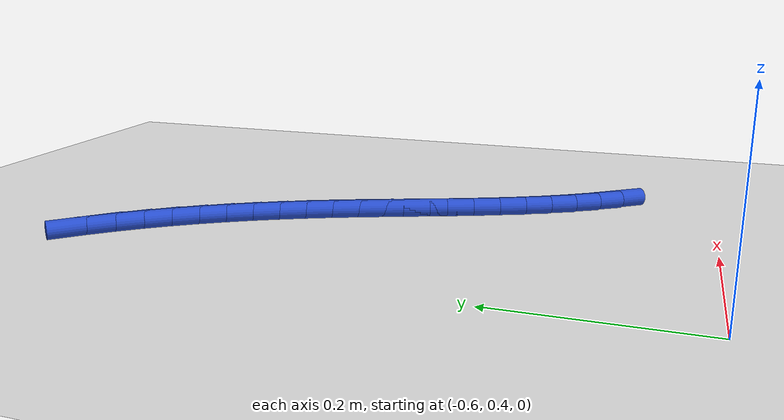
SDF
<sdf version="1.6">
 <world name="default">
  <model name="ground_plane">
   <static>1</static>
   <link name="link">
    <collision name="collision">
     <geometry><plane><normal>0 0 1</normal><size>100 100</size></plane></geometry>
     <surface><friction><ode><mu>100</mu><mu2>50</mu2></ode></friction></surface>
    </collision>
    <visual name="visual">
     <cast_shadows>0</cast_shadows>
     <geometry><plane><normal>0 0 1</normal><size>100 100</size></plane></geometry>
     <material>
      <script><uri>file://media/materials/scripts/gazebo.material</uri><name>Gazebo/WhiteGlow</name></script>
     </material>
    </visual>
   </link>
  </model>
  <model name="line">
   <link name="link_20">
    <pose>-0.2536606819779143 0.513876101480554 0.01 0 1.57 -0.9255852740462283</pose>
    <collision name="collision">
     <geometry><cylinder><radius>0.01</radius><length>0.08</length></cylinder></geometry>
    </collision>
    <visual name="visual">
     <material>
      <script><name>Gazebo/Blue</name><uri>file://media/materials/scripts/gazebo.material</uri></script>
     </material>
     <geometry><cylinder><radius>0.01</radius><length>0.08</length></cylinder></geometry>
    </visual>
   </link>
   <link name="link_21">
    <pose>-0.27168093402019006 0.5378177054313575 0.01 0 1.57 -0.989496703409248</pose>
    <collision name="collision">
     <geometry><cylinder><radius>0.01</radius><length>0.08</length></cylinder></geometry>
    </collision>
    <visual name="visual">
     <material>
      <script><name>Gazebo/Blue</name><uri>file://media/materials/scripts/gazebo.material</uri></script>
     </material>
     <geometry><cylinder><radius>0.01</radius><length>0.08</length></cylinder></geometry>
    </visual>
   </link>
   <link name="link_22">
    <pose>-0.28804299897083524 0.5627208709837269 0.01 0 1.57 -1.0482772937960567</pose>
    <collision name="collision">
     <geometry><cylinder><radius>0.01</radius><length>0.08</length></cylinder></geometry>
    </collision>
    <visual name="visual">
     <material>
      <script><name>Gazebo/Blue</name><uri>file://media/materials/scripts/gazebo.material</uri></script>
     </material>
     <geometry><cylinder><radius>0.01</radius><length>0.08</length></cylinder></geometry>
    </visual>
   </link>
   <link name="link_23">
    <pose>-0.3028887226538286 0.5884986570805574 0.01 0 1.57 -1.0974497386944173</pose>
    <collision name="collision">
     <geometry><cylinder><radius>0.01</radius><length>0.08</length></cylinder></geometry>
    </collision>
    <visual name="visual">
     <material>
      <script><name>Gazebo/Blue</name><uri>file://media/materials/scripts/gazebo.material</uri></script>
     </material>
     <geometry><cylinder><radius>0.01</radius><length>0.08</length></cylinder></geometry>
    </visual>
   </link>
   <link name="link_24">
    <pose>-0.3164650388248105 0.6150054157661312 0.01 0 1.57 -1.136845922140829</pose>
    <collision name="collision">
     <geometry><cylinder><radius>0.01</radius><length>0.08</length></cylinder></geometry>
    </collision>
    <visual name="visual">
     <material>
      <script><name>Gazebo/Blue</name><uri>file://media/materials/scripts/gazebo.material</uri></script>
     </material>
     <geometry><cylinder><radius>0.01</radius><length>0.08</length></cylinder></geometry>
    </visual>
   </link>
   <link name="link_25">
    <pose>-0.32901888209148666 0.64209549860873 0.01 0 1.57 -1.1664971877787347</pose>
    <collision name="collision">
     <geometry><cylinder><radius>0.01</radius><length>0.08</length></cylinder></geometry>
    </collision>
    <visual name="visual">
     <material>
      <script><name>Gazebo/Blue</name><uri>file://media/materials/scripts/gazebo.material</uri></script>
     </material>
     <geometry><cylinder><radius>0.01</radius><length>0.08</length></cylinder></geometry>
    </visual>
   </link>
   <link name="link_26">
    <pose>-0.34079718706156253 0.6696232571766353 0.01 0 1.57 -1.1865217684535214</pose>
    <collision name="collision">
     <geometry><cylinder><radius>0.01</radius><length>0.08</length></cylinder></geometry>
    </collision>
    <visual name="visual">
     <material>
      <script><name>Gazebo/Blue</name><uri>file://media/materials/scripts/gazebo.material</uri></script>
     </material>
     <geometry><cylinder><radius>0.01</radius><length>0.08</length></cylinder></geometry>
    </visual>
   </link>
   <link name="link_27">
    <pose>-0.3520468883427435 0.6974430430381275 0.01 0 1.57 -1.1970413427886664</pose>
    <collision name="collision">
     <geometry><cylinder><radius>0.01</radius><length>0.08</length></cylinder></geometry>
    </collision>
    <visual name="visual">
     <material>
      <script><name>Gazebo/Blue</name><uri>file://media/materials/scripts/gazebo.material</uri></script>
     </material>
     <geometry><cylinder><radius>0.01</radius><length>0.08</length></cylinder></geometry>
    </visual>
   </link>
   <link name="link_28">
    <pose>-0.3630149205427351 0.7254092077614883 0.01 0 1.57 -1.1981271007819305</pose>
    <collision name="collision">
     <geometry><cylinder><radius>0.01</radius><length>0.08</length></cylinder></geometry>
    </collision>
    <visual name="visual">
     <material>
      <script><name>Gazebo/Blue</name><uri>file://media/materials/scripts/gazebo.material</uri></script>
     </material>
     <geometry><cylinder><radius>0.01</radius><length>0.08</length></cylinder></geometry>
    </visual>
   </link>
   <link name="link_29">
    <pose>-0.37394821826924296 0.753376102914999 0.01 0 1.57 -1.1897723875010986</pose>
    <collision name="collision">
     <geometry><cylinder><radius>0.01</radius><length>0.08</length></cylinder></geometry>
    </collision>
    <visual name="visual">
     <material>
      <script><name>Gazebo/Blue</name><uri>file://media/materials/scripts/gazebo.material</uri></script>
     </material>
     <geometry><cylinder><radius>0.01</radius><length>0.08</length></cylinder></geometry>
    </visual>
   </link>
   <link name="link_30">
    <pose>-0.38509371612997206 0.78119808006694 0.01 0 1.57 -1.1718906123453805</pose>
    <collision name="collision">
     <geometry><cylinder><radius>0.01</radius><length>0.08</length></cylinder></geometry>
    </collision>
    <visual name="visual">
     <material>
      <script><name>Gazebo/Blue</name><uri>file://media/materials/scripts/gazebo.material</uri></script>
     </material>
     <geometry><cylinder><radius>0.01</radius><length>0.08</length></cylinder></geometry>
    </visual>
   </link>
   <link name="link_31">
    <pose>-0.39669832065502636 0.8087295072804076 0.01 0 1.57 -1.1458802670632349</pose>
    <collision name="collision">
     <geometry><cylinder><radius>0.01</radius><length>0.08</length></cylinder></geometry>
    </collision>
    <visual name="visual">
     <material>
      <script><name>Gazebo/Blue</name><uri>file://media/materials/scripts/gazebo.material</uri></script>
     </material>
     <geometry><cylinder><radius>0.01</radius><length>0.08</length></cylinder></geometry>
    </visual>
   </link>
   <link name="link_32">
    <pose>-0.4089690383214071 0.8358481927954906 0.01 0 1.57 -1.1162702524143353</pose>
    <collision name="collision">
     <geometry><cylinder><radius>0.01</radius><length>0.08</length></cylinder></geometry>
    </collision>
    <visual name="visual">
     <material>
      <script><name>Gazebo/Blue</name><uri>file://media/materials/scripts/gazebo.material</uri></script>
     </material>
     <geometry><cylinder><radius>0.01</radius><length>0.08</length></cylinder></geometry>
    </visual>
   </link>
   <link name="link_33">
    <pose>-0.4219934574967669 0.8625020996867165 0.01 0 1.57 -1.0839191640420225</pose>
    <collision name="collision">
     <geometry><cylinder><radius>0.01</radius><length>0.08</length></cylinder></geometry>
    </collision>
    <visual name="visual">
     <material>
      <script><name>Gazebo/Blue</name><uri>file://media/materials/scripts/gazebo.material</uri></script>
     </material>
     <geometry><cylinder><radius>0.01</radius><length>0.08</length></cylinder></geometry>
    </visual>
   </link>
   <link name="link_34">
    <pose>-0.4358369209933022 0.8886522596768136 0.01 0 1.57 -1.0488572850521165</pose>
    <collision name="collision">
     <geometry><cylinder><radius>0.01</radius><length>0.08</length></cylinder></geometry>
    </collision>
    <visual name="visual">
     <material>
      <script><name>Gazebo/Blue</name><uri>file://media/materials/scripts/gazebo.material</uri></script>
     </material>
     <geometry><cylinder><radius>0.01</radius><length>0.08</length></cylinder></geometry>
    </visual>
   </link>
   <link name="link_35">
    <pose>-0.4505647716232093 0.9142597044885112 0.01 0 1.57 -1.0111494737315954</pose>
    <collision name="collision">
     <geometry><cylinder><radius>0.01</radius><length>0.08</length></cylinder></geometry>
    </collision>
    <visual name="visual">
     <material>
      <script><name>Gazebo/Blue</name><uri>file://media/materials/scripts/gazebo.material</uri></script>
     </material>
     <geometry><cylinder><radius>0.01</radius><length>0.08</length></cylinder></geometry>
    </visual>
   </link>
   <link name="link_36">
    <pose>-0.4662423521986848 0.9392854658445384 0.01 0 1.57 -0.9709018523709882</pose>
    <collision name="collision">
     <geometry><cylinder><radius>0.01</radius><length>0.08</length></cylinder></geometry>
    </collision>
    <visual name="visual">
     <material>
      <script><name>Gazebo/Blue</name><uri>file://media/materials/scripts/gazebo.material</uri></script>
     </material>
     <geometry><cylinder><radius>0.01</radius><length>0.08</length></cylinder></geometry>
    </visual>
   </link>
   <link name="link_37">
    <pose>-0.48293500553192503 0.9636905754676239 0.01 0 1.57 -0.9282675177149626</pose>
    <collision name="collision">
     <geometry><cylinder><radius>0.01</radius><length>0.08</length></cylinder></geometry>
    </collision>
    <visual name="visual">
     <material>
      <script><name>Gazebo/Blue</name><uri>file://media/materials/scripts/gazebo.material</uri></script>
     </material>
     <geometry><cylinder><radius>0.01</radius><length>0.08</length></cylinder></geometry>
    </visual>
   </link>
   <link name="link_38">
    <pose>-0.5007080744351264 0.9874360650804972 0.01 0 1.57 -0.8834504608222832</pose>
    <collision name="collision">
     <geometry><cylinder><radius>0.01</radius><length>0.08</length></cylinder></geometry>
    </collision>
    <visual name="visual">
     <material>
      <script><name>Gazebo/Blue</name><uri>file://media/materials/scripts/gazebo.material</uri></script>
     </material>
     <geometry><cylinder><radius>0.01</radius><length>0.08</length></cylinder></geometry>
    </visual>
   </link>
   <link name="link_39">
    <pose>-0.5196269017204855 1.0104829664058868 0.01 0 1.57 -0.8367068518344898</pose>
    <collision name="collision">
     <geometry><cylinder><radius>0.01</radius><length>0.08</length></cylinder></geometry>
    </collision>
    <visual name="visual">
     <material>
      <script><name>Gazebo/Blue</name><uri>file://media/materials/scripts/gazebo.material</uri></script>
     </material>
     <geometry><cylinder><radius>0.01</radius><length>0.08</length></cylinder></geometry>
    </visual>
   </link>
   <link name="link_40">
    <pose>-0.5397568302001985 1.0327923111665216 0.01 0 1.57 -0.788342957180331</pose>
    <collision name="collision">
     <geometry><cylinder><radius>0.01</radius><length>0.08</length></cylinder></geometry>
    </collision>
    <visual name="visual">
     <material>
      <script><name>Gazebo/Blue</name><uri>file://media/materials/scripts/gazebo.material</uri></script>
     </material>
     <geometry><cylinder><radius>0.01</radius><length>0.08</length></cylinder></geometry>
    </visual>
   </link>
  </model>
 </world>
</sdf>
